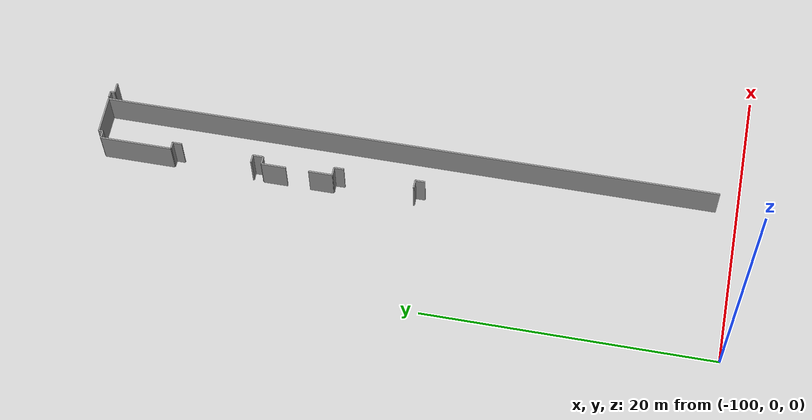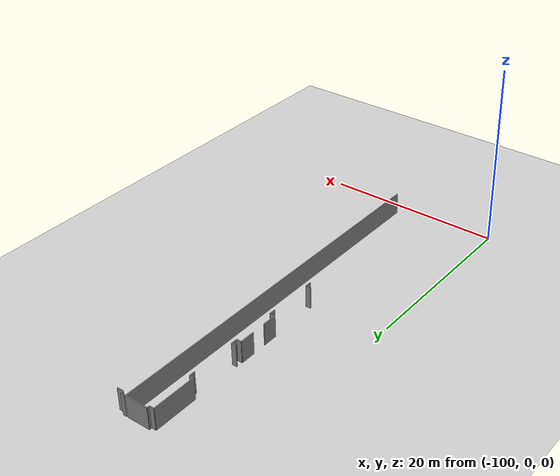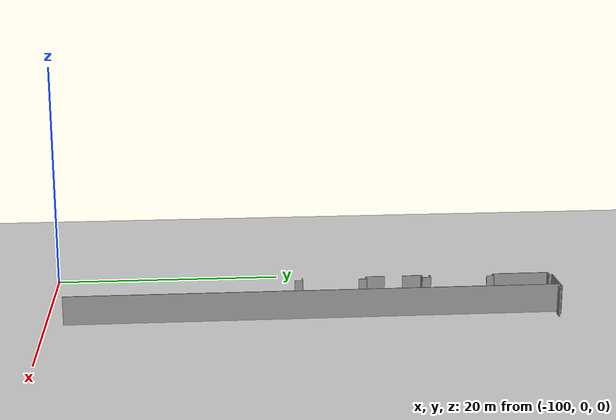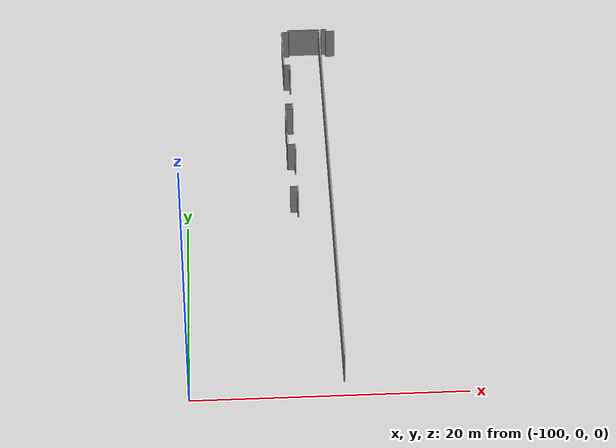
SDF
<sdf version="1.6">
 <world name="default">
  <model name="ground_plane">
   <static>1</static>
   <link name="link">
    <collision name="collision">
     <geometry><plane><normal>0 0 1</normal><size>100 100</size></plane></geometry>
     <surface><friction><ode><mu>100</mu><mu2>50</mu2></ode></friction></surface>
    </collision>
    <visual name="visual">
     <cast_shadows>0</cast_shadows>
     <geometry><plane><normal>0 0 1</normal><size>100 100</size></plane></geometry>
     <material>
      <script><uri>file://media/materials/scripts/gazebo.material</uri><name>Gazebo/Grey</name></script>
     </material>
    </visual>
   </link>
  </model>
  <model name="50015848">
   <static>1</static>
   <link name="Wall_203">
    <collision name="Wall_203_Collision">
     <geometry><box><size>0.684051278473 0.1 2.5</size></box></geometry>
     <pose>0.342025639237 0 1.25 0 0 0</pose>
    </collision>
    <visual name="Wall_203_Visual">
     <pose>0.342025639237 0 1.25 0 0 0</pose>
     <geometry><box><size>0.684051278473 0.1 2.5</size></box></geometry>
     <material>
      <script><uri>file://media/materials/scripts/gazebo.material</uri><name>Gazebo/Grey</name></script>
      <ambient>1 1 1 1</ambient>
     </material>
    </visual>
    <pose>40.3163990891 -22.6789894005 0 0 0 1.57079632679</pose>
   </link>
   <link name="Wall_204">
    <collision name="Wall_204_Collision">
     <geometry><box><size>0.583828631961 0.1 2.5</size></box></geometry>
     <pose>0.29191431598 0 1.25 0 0 0</pose>
    </collision>
    <visual name="Wall_204_Visual">
     <pose>0.29191431598 0 1.25 0 0 0</pose>
     <geometry><box><size>0.583828631961 0.1 2.5</size></box></geometry>
     <material>
      <script><uri>file://media/materials/scripts/gazebo.material</uri><name>Gazebo/Grey</name></script>
      <ambient>1 1 1 1</ambient>
     </material>
    </visual>
    <pose>40.3163990891 -21.994938122 0 0 0 3.14159265359</pose>
   </link>
   <link name="Wall_208">
    <collision name="Wall_208_Collision">
     <geometry><box><size>0.681767724502 0.1 2.5</size></box></geometry>
     <pose>0.340883862251 0 1.25 0 0 0</pose>
    </collision>
    <visual name="Wall_208_Visual">
     <pose>0.340883862251 0 1.25 0 0 0</pose>
     <geometry><box><size>0.681767724502 0.1 2.5</size></box></geometry>
     <material>
      <script><uri>file://media/materials/scripts/gazebo.material</uri><name>Gazebo/Grey</name></script>
      <ambient>1 1 1 1</ambient>
     </material>
    </visual>
    <pose>40.3136080787 -17.0974760385 0 0 0 1.57079632679</pose>
   </link>
   <link name="Wall_209">
    <collision name="Wall_209_Collision">
     <geometry><box><size>0.580276436895 0.1 2.5</size></box></geometry>
     <pose>0.290138218447 0 1.25 0 0 0</pose>
    </collision>
    <visual name="Wall_209_Visual">
     <pose>0.290138218447 0 1.25 0 0 0</pose>
     <geometry><box><size>0.580276436895 0.1 2.5</size></box></geometry>
     <material>
      <script><uri>file://media/materials/scripts/gazebo.material</uri><name>Gazebo/Grey</name></script>
      <ambient>1 1 1 1</ambient>
     </material>
    </visual>
    <pose>40.3136080787 -16.415708314 0 0 0 3.14159265359</pose>
   </link>
   <link name="Wall_210">
    <collision name="Wall_210_Collision">
     <geometry><box><size>1.64517377211 0.1 2.5</size></box></geometry>
     <pose>0.822586886057 0 1.25 0 0 0</pose>
    </collision>
    <visual name="Wall_210_Visual">
     <pose>0.822586886057 0 1.25 0 0 0</pose>
     <geometry><box><size>1.64517377211 0.1 2.5</size></box></geometry>
     <material>
      <script><uri>file://media/materials/scripts/gazebo.material</uri><name>Gazebo/Grey</name></script>
      <ambient>1 1 1 1</ambient>
     </material>
    </visual>
    <pose>39.7333316418 -16.415708314 0 0 0 1.57079632679</pose>
   </link>
   <link name="Wall_211">
    <collision name="Wall_211_Collision">
     <geometry><box><size>1.6850091025 0.1 2.5</size></box></geometry>
     <pose>0.84250455125 0 1.25 0 0 0</pose>
    </collision>
    <visual name="Wall_211_Visual">
     <pose>0.84250455125 0 1.25 0 0 0</pose>
     <geometry><box><size>1.6850091025 0.1 2.5</size></box></geometry>
     <material>
      <script><uri>file://media/materials/scripts/gazebo.material</uri><name>Gazebo/Grey</name></script>
      <ambient>1 1 1 1</ambient>
     </material>
    </visual>
    <pose>39.7333316418 -13.2030016048 0 0 0 1.57079632679</pose>
   </link>
   <link name="Wall_212">
    <collision name="Wall_212_Collision">
     <geometry><box><size>0.549829050612 0.1 2.5</size></box></geometry>
     <pose>0.274914525306 0 1.25 0 0 0</pose>
    </collision>
    <visual name="Wall_212_Visual">
     <pose>0.274914525306 0 1.25 0 0 0</pose>
     <geometry><box><size>0.549829050612 0.1 2.5</size></box></geometry>
     <material>
      <script><uri>file://media/materials/scripts/gazebo.material</uri><name>Gazebo/Grey</name></script>
      <ambient>1 1 1 1</ambient>
     </material>
    </visual>
    <pose>39.7333316418 -11.5179925023 0 0 0 0.0</pose>
   </link>
   <link name="Wall_213">
    <collision name="Wall_213_Collision">
     <geometry><box><size>0.717289675164 0.1 2.5</size></box></geometry>
     <pose>0.358644837582 0 1.25 0 0 0</pose>
    </collision>
    <visual name="Wall_213_Visual">
     <pose>0.358644837582 0 1.25 0 0 0</pose>
     <geometry><box><size>0.717289675164 0.1 2.5</size></box></geometry>
     <material>
      <script><uri>file://media/materials/scripts/gazebo.material</uri><name>Gazebo/Grey</name></script>
      <ambient>1 1 1 1</ambient>
     </material>
    </visual>
    <pose>40.2831606924 -11.5179925023 0 0 0 1.57079632679</pose>
   </link>
   <link name="Wall_214">
    <collision name="Wall_214_Collision">
     <geometry><box><size>0.550590235269 0.1 2.5</size></box></geometry>
     <pose>0.275295117635 0 1.25 0 0 0</pose>
    </collision>
    <visual name="Wall_214_Visual">
     <pose>0.275295117635 0 1.25 0 0 0</pose>
     <geometry><box><size>0.550590235269 0.1 2.5</size></box></geometry>
     <material>
      <script><uri>file://media/materials/scripts/gazebo.material</uri><name>Gazebo/Grey</name></script>
      <ambient>1 1 1 1</ambient>
     </material>
    </visual>
    <pose>40.2831606924 -10.8007028272 0 0 0 3.14159265359</pose>
   </link>
   <link name="Wall_218">
    <collision name="Wall_218_Collision">
     <geometry><box><size>0.634066819326 0.1 2.5</size></box></geometry>
     <pose>0.317033409663 0 1.25 0 0 0</pose>
    </collision>
    <visual name="Wall_218_Visual">
     <pose>0.317033409663 0 1.25 0 0 0</pose>
     <geometry><box><size>0.634066819326 0.1 2.5</size></box></geometry>
     <material>
      <script><uri>file://media/materials/scripts/gazebo.material</uri><name>Gazebo/Grey</name></script>
      <ambient>1 1 1 1</ambient>
     </material>
    </visual>
    <pose>40.2831606924 -5.84589816618 0 0 0 1.57079632679</pose>
   </link>
   <link name="Wall_219">
    <collision name="Wall_219_Collision">
     <geometry><box><size>0.483859713668 0.1 2.5</size></box></geometry>
     <pose>0.241929856834 0 1.25 0 0 0</pose>
    </collision>
    <visual name="Wall_219_Visual">
     <pose>0.241929856834 0 1.25 0 0 0</pose>
     <geometry><box><size>0.483859713668 0.1 2.5</size></box></geometry>
     <material>
      <script><uri>file://media/materials/scripts/gazebo.material</uri><name>Gazebo/Grey</name></script>
      <ambient>1 1 1 1</ambient>
     </material>
    </visual>
    <pose>40.2831606924 -5.21183134685 0 0 0 3.14159265359</pose>
   </link>
   <link name="Wall_220">
    <collision name="Wall_220_Collision">
     <geometry><box><size>4.91344696129 0.1 2.5</size></box></geometry>
     <pose>2.45672348064 0 1.25 0 0 0</pose>
    </collision>
    <visual name="Wall_220_Visual">
     <pose>2.45672348064 0 1.25 0 0 0</pose>
     <geometry><box><size>4.91344696129 0.1 2.5</size></box></geometry>
     <material>
      <script><uri>file://media/materials/scripts/gazebo.material</uri><name>Gazebo/Grey</name></script>
      <ambient>1 1 1 1</ambient>
     </material>
    </visual>
    <pose>39.7993009788 -5.21183134685 0 0 0 1.57079632679</pose>
   </link>
   <link name="Wall_221">
    <collision name="Wall_221_Collision">
     <geometry><box><size>0.517351838578 0.1 2.5</size></box></geometry>
     <pose>0.258675919289 0 1.25 0 0 0</pose>
    </collision>
    <visual name="Wall_221_Visual">
     <pose>0.258675919289 0 1.25 0 0 0</pose>
     <geometry><box><size>0.517351838578 0.1 2.5</size></box></geometry>
     <material>
      <script><uri>file://media/materials/scripts/gazebo.material</uri><name>Gazebo/Grey</name></script>
      <ambient>1 1 1 1</ambient>
     </material>
    </visual>
    <pose>39.7993009788 -0.298384385565 0 0 0 0.0</pose>
   </link>
   <link name="Wall_222">
    <collision name="Wall_222_Collision">
     <geometry><box><size>0.277578671606 0.1 2.5</size></box></geometry>
     <pose>0.138789335803 0 1.25 0 0 0</pose>
    </collision>
    <visual name="Wall_222_Visual">
     <pose>0.138789335803 0 1.25 0 0 0</pose>
     <geometry><box><size>0.277578671606 0.1 2.5</size></box></geometry>
     <material>
      <script><uri>file://media/materials/scripts/gazebo.material</uri><name>Gazebo/Grey</name></script>
      <ambient>1 1 1 1</ambient>
     </material>
    </visual>
    <pose>40.3166528173 -0.298384385565 0 0 0 1.57079632679</pose>
   </link>
   <link name="Wall_223">
    <collision name="Wall_223_Collision">
     <geometry><box><size>2.58599800823 0.1 2.5</size></box></geometry>
     <pose>1.29299900412 0 1.25 0 0 0</pose>
    </collision>
    <visual name="Wall_223_Visual">
     <pose>1.29299900412 0 1.25 0 0 0</pose>
     <geometry><box><size>2.58599800823 0.1 2.5</size></box></geometry>
     <material>
      <script><uri>file://media/materials/scripts/gazebo.material</uri><name>Gazebo/Grey</name></script>
      <ambient>1 1 1 1</ambient>
     </material>
    </visual>
    <pose>40.3166528173 -0.0208057139595 0 0 0 0.0</pose>
   </link>
   <link name="Wall_224">
    <collision name="Wall_224_Collision">
     <geometry><box><size>42.2942105564 0.1 2.5</size></box></geometry>
     <pose>21.1471052782 0 1.25 0 0 0</pose>
    </collision>
    <visual name="Wall_224_Visual">
     <pose>21.1471052782 0 1.25 0 0 0</pose>
     <geometry><box><size>42.2942105564 0.1 2.5</size></box></geometry>
     <material>
      <script><uri>file://media/materials/scripts/gazebo.material</uri><name>Gazebo/Grey</name></script>
      <ambient>1 1 1 1</ambient>
     </material>
    </visual>
    <pose>42.9026508256 -0.0208057139595 0 0 0 -1.57079632679</pose>
   </link>
   <link name="Wall_267">
    <collision name="Wall_267_Collision">
     <geometry><box><size>0.417382920285 0.1 2.5</size></box></geometry>
     <pose>0.208691460142 0 1.25 0 0 0</pose>
    </collision>
    <visual name="Wall_267_Visual">
     <pose>0.208691460142 0 1.25 0 0 0</pose>
     <geometry><box><size>0.417382920285 0.1 2.5</size></box></geometry>
     <material>
      <script><uri>file://media/materials/scripts/gazebo.material</uri><name>Gazebo/Grey</name></script>
      <ambient>1 1 1 1</ambient>
     </material>
    </visual>
    <pose>43.0531116594 -0.00811930300859 0 0 0 0.0</pose>
   </link>
   <link name="Wall_268">
    <collision name="Wall_268_Collision">
     <geometry><box><size>0.290265082557 0.1 2.5</size></box></geometry>
     <pose>0.145132541278 0 1.25 0 0 0</pose>
    </collision>
    <visual name="Wall_268_Visual">
     <pose>0.145132541278 0 1.25 0 0 0</pose>
     <geometry><box><size>0.290265082557 0.1 2.5</size></box></geometry>
     <material>
      <script><uri>file://media/materials/scripts/gazebo.material</uri><name>Gazebo/Grey</name></script>
      <ambient>1 1 1 1</ambient>
     </material>
    </visual>
    <pose>43.4704945797 -0.00811930300859 0 0 0 -1.57079632679</pose>
   </link>
   <link name="Wall_269">
    <collision name="Wall_269_Collision">
     <geometry><box><size>0.719065772698 0.1 2.5</size></box></geometry>
     <pose>0.359532886349 0 1.25 0 0 0</pose>
    </collision>
    <visual name="Wall_269_Visual">
     <pose>0.359532886349 0 1.25 0 0 0</pose>
     <geometry><box><size>0.719065772698 0.1 2.5</size></box></geometry>
     <material>
      <script><uri>file://media/materials/scripts/gazebo.material</uri><name>Gazebo/Grey</name></script>
      <ambient>1 1 1 1</ambient>
     </material>
    </visual>
    <pose>43.4704945797 -0.298384385565 0 0 0 0.0</pose>
   </link>
   <pose>-131.8 43.7717730528 0 0 0 0</pose>
  </model>
 </world>
</sdf>
